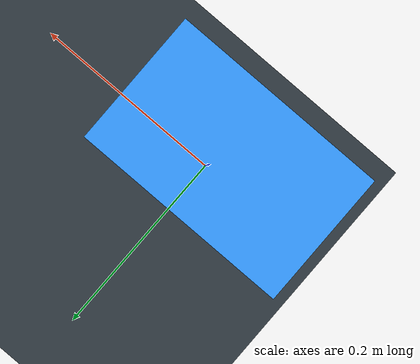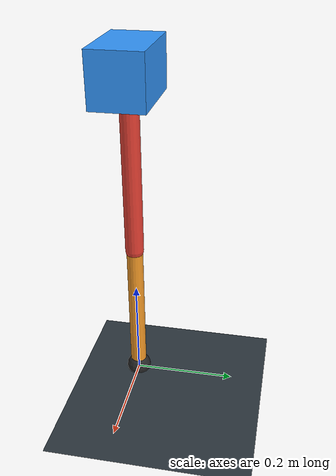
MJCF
<mujoco model="single_axis_two_bar">
  <compiler angle="radian" inertiafromgeom="true"/>
  <option timestep="0.001" integrator="implicitfast" gravity="0 0 -9.81"/>
  <default>
    <joint damping="0.08"/>
    <geom friction="1.2 0.01 0.0001" condim="3"/>
  </default>
  <worldbody>
    <geom name="floor" type="plane" size="5 5 0.1" rgba="0.18 0.22 0.25 1"/>
    <body name="carriage" pos="0 0 0.6391533946153023">
      <joint name="pole_slide" type="slide" axis="0 0 1"/>
      <geom name="payload" type="box" size="0.08 0.05 0.05" mass="3.195005925706927" rgba="0.2 0.6 1 1"/>
      <body name="thigh" pos="0 0 0">
        <joint name="hip" type="hinge" axis="0 1 0"/>
        <geom name="thigh_link" type="capsule" fromto="0 0 0 0 0 -0.3494787545545645" size="0.018" mass="0.2490082305744341" rgba="0.9 0.25 0.2 1"/>
        <body name="shank" pos="0 0 -0.3494787545545645">
          <joint name="knee" type="hinge" axis="0 1 0"/>
          <geom name="shank_link" type="capsule" fromto="0 0 0 0 0 -0.2836690749457471" size="0.016" mass="0.2021179642549589" rgba="0.95 0.6 0.15 1"/>
          <geom name="foot" type="sphere" pos="0 0 -0.2836690749457471" size="0.025" mass="0.03" rgba="0.15 0.15 0.15 1"/>
          <site name="toe" pos="0 0 -0.2836690749457471" size="0.008"/>
        </body>
      </body>
    </body>
  </worldbody>
  <actuator>
    <motor name="hip_motor" joint="hip" ctrlrange="-31.296708372331665 31.296708372331665"/>
    <motor name="knee_motor" joint="knee" ctrlrange="-149.7825163531595 149.7825163531595"/>
  </actuator>
</mujoco>
